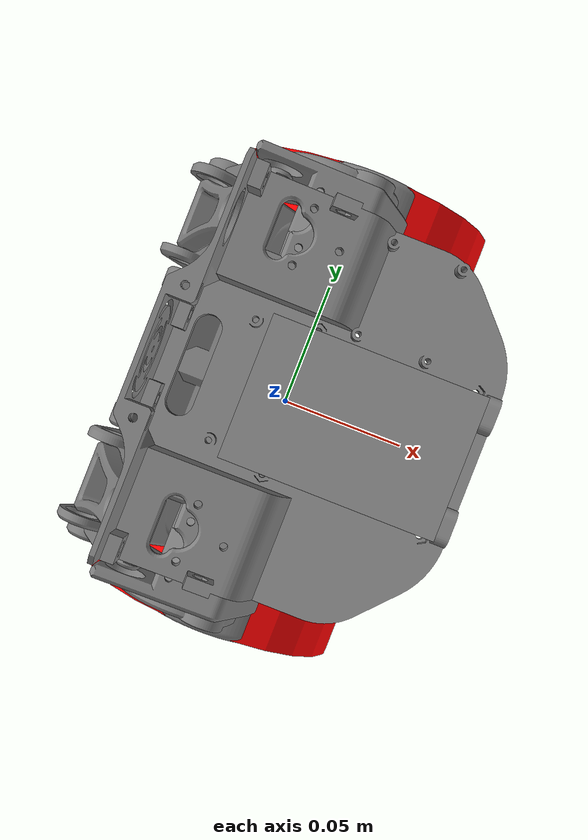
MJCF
<mujoco model="robot">
    <compiler angle="radian" meshdir="stl" />
    <default>
        <mesh scale="0.001 0.001 0.001" />
        <geom type="mesh" />
        <joint damping="0.02" armature="0.05" frictionloss="0.01" axis="1 0 0" />
        <default class="foot_collider">
            <geom type="cylinder" quat="0.7071 0 0.7071 0" size="0.075 0.018" rgba="1 0 0 1"
                contype="1" conaffinity="1" />
        </default>
        <default class="mirror">
            <mesh scale="-0.001 0.001 0.001" />
        </default>
    </default>
    <asset>
        <mesh name="back_cap" file="Back Battery Cap.stl" />
        <mesh name="back" file="Back.stl" />
        <mesh name="battery" file="Battery.stl" />
        <mesh name="mounting_plate" file="Mounting Plate.stl" />
        <mesh name="shell" file="Shell.stl" />

        <mesh name="R_hip" file="Servo Leg Housing Assembly.stl" />
        <mesh name="R_hip_servo" file="Servo Leg Housing Servo.stl" />
        <mesh name="R_thigh" file="Upper Leg Asembly.stl" />
        <mesh name="R_shin" file="Lower Leg.stl" />
        <mesh name="R_shin_servo" file="Lower Servo.stl" />
        <mesh name="R_link" file="Leg Link Assembly.stl" />
        <mesh name="R_foot" file="Wheel.stl" />

        <mesh name="L_hip" file="Servo Leg Housing Assembly.stl" class="mirror" />
        <mesh name="L_hip_servo" file="Servo Leg Housing Servo.stl" class="mirror" />
        <mesh name="L_thigh" file="Upper Leg Asembly.stl" class="mirror" />
        <mesh name="L_shin" file="Lower Leg.stl" class="mirror" />
        <mesh name="L_shin_servo" file="Lower Servo.stl" class="mirror" />
        <mesh name="L_link" file="Leg Link Assembly.stl" class="mirror" />
        <mesh name="L_foot" file="Wheel.stl" class="mirror" />
    </asset>
    <worldbody>
        <body name="body" quat="0.7071 0 0 0.7071">
            <site name="ImuSensor" pos="0 0 0" euler="0 0 -1.57079633" />
            <geom mesh="back_cap" mass="0.015" />
            <geom mesh="back" mass="0.034" />
            <geom mesh="mounting_plate" mass="0.15" />
            <geom mesh="battery" mass="0.37" />
            <geom type="box" size="0.028 0.042 0.005" pos="0 -0.0265 0.04579" mass="0.08" />

            <body name="R_leg" pos="-0.0654 0 0">
                <geom mesh="R_hip" mass="0.045" />
                <geom mesh="R_hip_servo" mass="0.063" />
                <body name="R_thigh">
                    <joint name="R_hip" pos="-0.0177 -0.000008 0.000007" />
                    <geom mesh="R_thigh" mass="0.055" />
                    <body name="R_shin">
                        <joint name="R_shin" pos="-0.0177 0.068524 -0.096679" />
                        <geom mesh="R_shin" mass="0.067" />
                        <geom mesh="R_shin_servo" mass="0.063" />
                        <body name="R_link">
                            <joint name="R_link" pos="-0.0177 0.086545 -0.071455" />
                            <geom mesh="R_link" mass="0.047" />
                        </body>
                        <body name="R_foot">
                            <joint name="R_foot" pos="-0.0177 -0.000838 -0.193474" />
                            <geom mesh="R_foot" mass="0.35" contype="0" conaffinity="0" />
                            <geom pos="-0.045 -0.000838 -0.193474" class="foot_collider" />
                        </body>
                    </body>
                </body>
            </body>

            <body name="L_leg" pos="0.0654 0 0">
                <geom mesh="L_hip" mass="0.045" />
                <geom mesh="L_hip_servo" mass="0.063" />
                <body name="L_thigh">
                    <joint name="L_hip" pos="-0.0177 -0.000008 0.000007" />
                    <geom mesh="L_thigh" mass="0.055" />
                    <body name="L_shin">
                        <joint name="L_shin" pos="-0.0177 0.068524 -0.096679" />
                        <geom mesh="L_shin" mass="0.067" />
                        <geom mesh="L_shin_servo" mass="0.063" />
                        <body name="L_link">
                            <joint name="L_link" pos="-0.0177 0.086545 -0.071455" />
                            <geom mesh="L_link" mass="0.047" />
                        </body>
                        <body name="L_foot">
                            <joint name="L_foot" pos="-0.0177 -0.000838 -0.193474" />
                            <geom mesh="L_foot" mass="0.35" contype="0" conaffinity="0" />
                            <geom pos="0.045 -0.000838 -0.193474" class="foot_collider" />
                        </body>
                    </body>
                </body>
            </body>

        </body>
    </worldbody>
    <equality>
        <connect anchor="-0.0177 0.041353 0.042082" body1="body" body2="R_link"
            name="eq_constraint_R" />
        <connect anchor="-0.0177 0.041353 0.042082" body1="body" body2="L_link"
            name="eq_constraint_L" />
    </equality>
    <contact>
        <exclude body1="R_link" body2="R_leg" />
        <exclude body1="R_link" body2="body" />
        <exclude body1="R_link" body2="R_thigh" />
        <exclude body1="R_thigh" body2="body" />
        <exclude body1="R_thigh" body2="R_leg" />

        <exclude body1="L_link" body2="L_leg" />
        <exclude body1="L_link" body2="body" />
        <exclude body1="L_link" body2="L_thigh" />
        <exclude body1="L_thigh" body2="body" />
        <exclude body1="L_thigh" body2="L_leg" />
    </contact>
    <actuator>
        <position name="L_hip" joint="L_hip" kp="32" kv="5" ctrlrange="-0.20 0.65" />
        <position name="R_hip" joint="R_hip" kp="32" kv="5" ctrlrange="-0.20 0.65" />

        <velocity name="L_foot" joint="L_foot"
            ctrllimited="true" ctrlrange="-10 10"
            forcelimited="true" forcerange="-0.98 0.98"
            kv="1"/>
        <velocity name="R_foot" joint="R_foot"
            ctrllimited="true" ctrlrange="-10 10"
            forcelimited="true" forcerange="-0.98 0.98"
            kv="1"/>
    </actuator>
    <sensor>
        <framequat name="ImuSensor_Framequat" objtype="site" objname="ImuSensor" />
        <velocimeter name="ImuSensor_Velocimeter" site="ImuSensor" />
        <gyro name="ImuSensor_Gyro" site="ImuSensor" />
        <accelerometer name="ImuSensor_Accelerometer" site="ImuSensor" />
    </sensor>
</mujoco>
